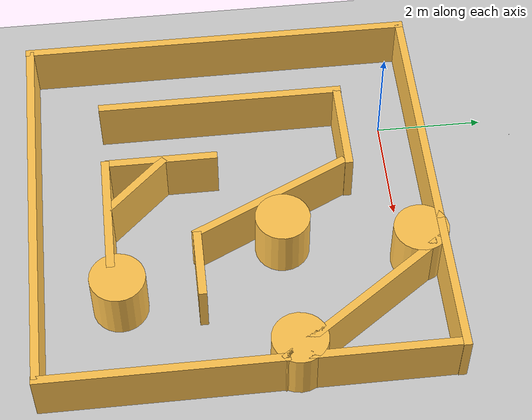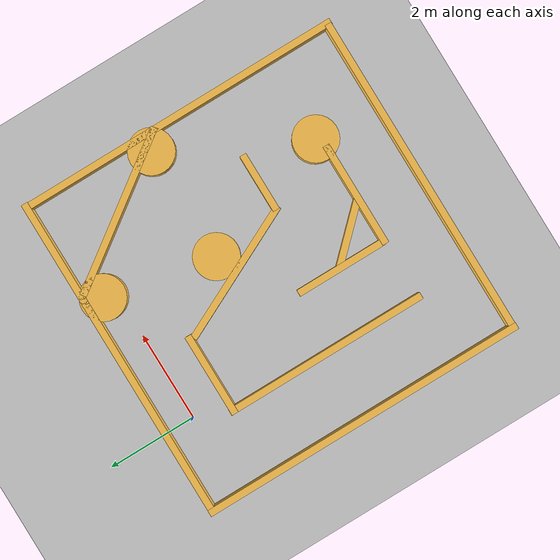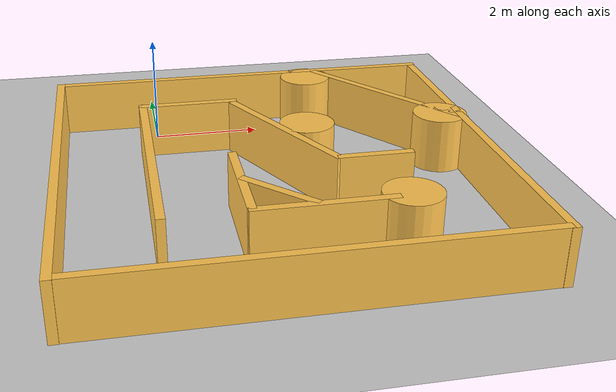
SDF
<sdf version="1.6">
 <world name="default">
  <light name="sun" type="directional">
   <pose>0 0 10 0 -0 0</pose>
   <diffuse>0.8 0.8 0.8 1</diffuse>
   <specular>0.1 0.1 0.1 1</specular>
   <attenuation>
    <range>1000</range>
    <constant>0.9</constant>
    <linear>0.01</linear>
    <quadratic>0.001</quadratic>
   </attenuation>
   <direction>-0.5 0.5 -1</direction>
  </light>
  <model name="ground_plane">
   <static>1</static>
   <link name="link">
    <collision name="collision">
     <geometry><plane><normal>0 0 1</normal><size>100 100</size></plane></geometry>
     <surface><friction><ode><mu>100</mu><mu2>50</mu2></ode></friction></surface>
    </collision>
    <visual name="visual">
     <cast_shadows>0</cast_shadows>
     <geometry><plane><normal>0 0 1</normal><size>100 100</size></plane></geometry>
     <material>
      <script><uri>file://media/materials/scripts/gazebo.material</uri><name>Gazebo/Grey</name></script>
     </material>
    </visual>
   </link>
  </model>
  <gravity>0 0 -9.8</gravity>
  <magnetic_field>6e-06 2.3e-05 -4.2e-05</magnetic_field>
  <atmosphere type="adiabatic"/>
  <physics name="default_physics" default="0" type="ode">
   <max_step_size>0.001</max_step_size>
   <real_time_factor>1</real_time_factor>
   <real_time_update_rate>1000</real_time_update_rate>
  </physics>
  <scene><ambient>0.4 0.4 0.4 1</ambient><background>0.7 0.7 0.7 1</background><shadows>1</shadows></scene>
  <spherical_coordinates>
   <surface_model>EARTH_WGS84</surface_model>
   <latitude_deg>0</latitude_deg>
   <longitude_deg>0</longitude_deg>
   <elevation>0</elevation>
   <heading_deg>0</heading_deg>
  </spherical_coordinates>
  <model name="ball_bearing">
   <link name="link">
    <pose>0 0 0.003 0 -0 0</pose>
    <inertial>
     <mass>0.0011</mass>
     <inertia>
      <ixx>3.96e-09</ixx>
      <ixy>0</ixy>
      <ixz>0</ixz>
      <iyy>3.96e-09</iyy>
      <iyz>0</iyz>
      <izz>3.96e-09</izz>
     </inertia>
    </inertial>
    <collision name="collision">
     <geometry><sphere><radius>0.003</radius></sphere></geometry>
     <surface>
      <contact>
       <poissons_ratio>0.305</poissons_ratio>
       <elastic_modulus>2e+11</elastic_modulus>
       <ode><kp>100000</kp><kd>100</kd><max_vel>100</max_vel><min_depth>0.001</min_depth></ode>
      </contact>
      <friction>
       <torsional>
        <coefficient>1</coefficient>
        <use_patch_radius>0</use_patch_radius>
        <surface_radius>0.01</surface_radius>
       </torsional>
      </friction>
     </surface>
    </collision>
    <visual name="visual">
     <geometry><sphere><radius>0.003</radius></sphere></geometry>
     <material>
      <script><uri>file://media/materials/scripts/gazebo.material</uri><name>Gazebo/Grey</name></script>
     </material>
    </visual>
    <velocity_decay><linear>0</linear><angular>0.005</angular></velocity_decay>
   </link>
   <pose>0.369697 2.53664 -0.000398 0 -0 0</pose>
  </model>
  <model name="Maze_ql_1_0">
   <link name="Wall_10">
    <pose>-2.02568 2.92333 0 0 -0 3.14159</pose>
    <visual name="Wall_10_Visual">
     <pose>0 0 0.5 0 -0 0</pose>
     <geometry><box><size>1.8711 0.15 1</size></box></geometry>
     <material>
      <script><uri>file://media/materials/scripts/gazebo.material</uri><name>Gazebo/Grey</name></script>
      <ambient>1 0.764706 0.305882 1</ambient>
      <diffuse>0.7 0.7 0.7 1</diffuse>
      <specular>0.01 0.01 0.01 1</specular>
      <emissive>0 0 0 1</emissive>
      <shader type="pixel"/>
     </material>
    </visual>
    <collision name="Wall_10_Collision">
     <pose>0 0 0.5 0 -0 0</pose>
     <geometry><box><size>1.8711 0.15 1</size></box></geometry>
     <surface>
      <friction><ode><mu>1</mu><mu2>1</mu2><fdir1>0 0 0</fdir1><slip1>0</slip1><slip2>0</slip2></ode></friction>
      <bounce><restitution_coefficient>0</restitution_coefficient><threshold>1e+06</threshold></bounce>
      <contact>
       <collide_without_contact>0</collide_without_contact>
       <collide_without_contact_bitmask>1</collide_without_contact_bitmask>
       <collide_bitmask>1</collide_bitmask>
       <ode>
        <soft_cfm>0</soft_cfm>
        <soft_erp>0.2</soft_erp>
        <kp>1e+13</kp>
        <kd>1</kd>
        <max_vel>0.01</max_vel>
        <min_depth>0</min_depth>
       </ode>
       <bullet>
        <split_impulse>1</split_impulse>
        <split_impulse_penetration_threshold>-0.01</split_impulse_penetration_threshold>
        <soft_cfm>0</soft_cfm>
        <soft_erp>0.2</soft_erp>
        <kp>1e+13</kp>
        <kd>1</kd>
       </bullet>
      </contact>
     </surface>
    </collision>
   </link>
   <link name="Wall_11">
    <pose>-2.887 0.69235 0 0 0 -1.5708</pose>
    <visual name="Wall_11_Visual">
     <pose>0 0 0.5 0 -0 0</pose>
     <geometry><box><size>4.62378 0.15 1</size></box></geometry>
     <material>
      <script><uri>file://media/materials/scripts/gazebo.material</uri><name>Gazebo/Grey</name></script>
      <ambient>1 0.764706 0.305882 1</ambient>
      <diffuse>0.7 0.7 0.7 1</diffuse>
      <specular>0.01 0.01 0.01 1</specular>
      <emissive>0 0 0 1</emissive>
      <shader type="pixel"/>
     </material>
    </visual>
    <collision name="Wall_11_Collision">
     <pose>0 0 0.5 0 -0 0</pose>
     <geometry><box><size>4.62378 0.15 1</size></box></geometry>
     <surface>
      <friction><ode><mu>1</mu><mu2>1</mu2><fdir1>0 0 0</fdir1><slip1>0</slip1><slip2>0</slip2></ode></friction>
      <bounce><restitution_coefficient>0</restitution_coefficient><threshold>1e+06</threshold></bounce>
      <contact>
       <collide_without_contact>0</collide_without_contact>
       <collide_without_contact_bitmask>1</collide_without_contact_bitmask>
       <collide_bitmask>1</collide_bitmask>
       <ode>
        <soft_cfm>0</soft_cfm>
        <soft_erp>0.2</soft_erp>
        <kp>1e+13</kp>
        <kd>1</kd>
        <max_vel>0.01</max_vel>
        <min_depth>0</min_depth>
       </ode>
       <bullet>
        <split_impulse>1</split_impulse>
        <split_impulse_penetration_threshold>-0.01</split_impulse_penetration_threshold>
        <soft_cfm>0</soft_cfm>
        <soft_erp>0.2</soft_erp>
        <kp>1e+13</kp>
        <kd>1</kd>
       </bullet>
      </contact>
     </surface>
    </collision>
   </link>
   <link name="Wall_11_clone">
    <pose>-4.44208 0.738947 0 0 0 -1.5708</pose>
    <visual name="ModelPreview_2::Wall_11_clone::Wall_11_Visual">
     <pose>0 0 0.5 0 -0 0</pose>
     <geometry><box><size>7.42809 0.15 1</size></box></geometry>
     <material>
      <script><uri>file://media/materials/scripts/gazebo.material</uri><name>Gazebo/Grey</name></script>
      <ambient>1 0.764706 0.305882 1</ambient>
      <diffuse>0.7 0.7 0.7 1</diffuse>
      <specular>0.01 0.01 0.01 1</specular>
      <emissive>0 0 0 1</emissive>
      <shader type="pixel"/>
     </material>
    </visual>
    <collision name="Wall_11_Collision">
     <pose>0 0 0.5 0 -0 0</pose>
     <geometry><box><size>7.42809 0.15 1</size></box></geometry>
     <surface>
      <friction><ode><mu>1</mu><mu2>1</mu2><fdir1>0 0 0</fdir1><slip1>0</slip1><slip2>0</slip2></ode></friction>
      <bounce><restitution_coefficient>0</restitution_coefficient><threshold>1e+06</threshold></bounce>
      <contact>
       <collide_without_contact>0</collide_without_contact>
       <collide_without_contact_bitmask>1</collide_without_contact_bitmask>
       <collide_bitmask>1</collide_bitmask>
       <ode>
        <soft_cfm>0</soft_cfm>
        <soft_erp>0.2</soft_erp>
        <kp>1e+13</kp>
        <kd>1</kd>
        <max_vel>0.01</max_vel>
        <min_depth>0</min_depth>
       </ode>
       <bullet>
        <split_impulse>1</split_impulse>
        <split_impulse_penetration_threshold>-0.01</split_impulse_penetration_threshold>
        <soft_cfm>0</soft_cfm>
        <soft_erp>0.2</soft_erp>
        <kp>1e+13</kp>
        <kd>1</kd>
       </bullet>
      </contact>
     </surface>
    </collision>
   </link>
   <link name="Wall_14">
    <pose>-0.409926 -1.55115 0 0 -0 3.14159</pose>
    <visual name="Wall_14_Visual">
     <pose>0 0 0.5 0 -0 0</pose>
     <geometry><box><size>2.36648 0.15 1</size></box></geometry>
     <material>
      <script><uri>file://media/materials/scripts/gazebo.material</uri><name>Gazebo/Grey</name></script>
      <ambient>1 0.764706 0.305882 1</ambient>
      <diffuse>0.7 0.7 0.7 1</diffuse>
      <specular>0.01 0.01 0.01 1</specular>
      <emissive>0 0 0 1</emissive>
      <shader type="pixel"/>
     </material>
    </visual>
    <collision name="Wall_14_Collision">
     <pose>0 0 0.5 0 -0 0</pose>
     <geometry><box><size>2.36648 0.15 1</size></box></geometry>
     <surface>
      <friction><ode><mu>1</mu><mu2>1</mu2><fdir1>0 0 0</fdir1><slip1>0</slip1><slip2>0</slip2></ode></friction>
      <bounce><restitution_coefficient>0</restitution_coefficient><threshold>1e+06</threshold></bounce>
      <contact>
       <collide_without_contact>0</collide_without_contact>
       <collide_without_contact_bitmask>1</collide_without_contact_bitmask>
       <collide_bitmask>1</collide_bitmask>
       <ode>
        <soft_cfm>0</soft_cfm>
        <soft_erp>0.2</soft_erp>
        <kp>1e+13</kp>
        <kd>1</kd>
        <max_vel>0.01</max_vel>
        <min_depth>0</min_depth>
       </ode>
       <bullet>
        <split_impulse>1</split_impulse>
        <split_impulse_penetration_threshold>-0.01</split_impulse_penetration_threshold>
        <soft_cfm>0</soft_cfm>
        <soft_erp>0.2</soft_erp>
        <kp>1e+13</kp>
        <kd>1</kd>
       </bullet>
      </contact>
     </surface>
    </collision>
   </link>
   <link name="Wall_15">
    <pose>-1.53187 -0.513425 0 0 -0 1.5708</pose>
    <visual name="Wall_15_Visual">
     <pose>0 0 0.5 0 -0 0</pose>
     <geometry><box><size>2.06622 0.15 1</size></box></geometry>
     <material>
      <script><uri>file://media/materials/scripts/gazebo.material</uri><name>Gazebo/Grey</name></script>
      <ambient>1 0.764706 0.305882 1</ambient>
      <diffuse>0.7 0.7 0.7 1</diffuse>
      <specular>0.01 0.01 0.01 1</specular>
      <emissive>0 0 0 1</emissive>
      <shader type="pixel"/>
     </material>
    </visual>
    <collision name="Wall_15_Collision">
     <pose>0 0 0.5 0 -0 0</pose>
     <geometry><box><size>2.06622 0.15 1</size></box></geometry>
     <surface>
      <friction><ode><mu>1</mu><mu2>1</mu2><fdir1>0 0 0</fdir1><slip1>0</slip1><slip2>0</slip2></ode></friction>
      <bounce><restitution_coefficient>0</restitution_coefficient><threshold>1e+06</threshold></bounce>
      <contact>
       <collide_without_contact>0</collide_without_contact>
       <collide_without_contact_bitmask>1</collide_without_contact_bitmask>
       <collide_bitmask>1</collide_bitmask>
       <ode>
        <soft_cfm>0</soft_cfm>
        <soft_erp>0.2</soft_erp>
        <kp>1e+13</kp>
        <kd>1</kd>
        <max_vel>0.01</max_vel>
        <min_depth>0</min_depth>
       </ode>
       <bullet>
        <split_impulse>1</split_impulse>
        <split_impulse_penetration_threshold>-0.01</split_impulse_penetration_threshold>
        <soft_cfm>0</soft_cfm>
        <soft_erp>0.2</soft_erp>
        <kp>1e+13</kp>
        <kd>1</kd>
       </bullet>
      </contact>
     </surface>
    </collision>
   </link>
   <link name="Wall_19">
    <pose>0.837565 0.010614 0 0 -0 3.14159</pose>
    <visual name="Wall_19_Visual">
     <pose>0 0 0.5 0 -0 0</pose>
     <geometry><box><size>1.32777 0.15 1</size></box></geometry>
     <material>
      <script><uri>file://media/materials/scripts/gazebo.material</uri><name>Gazebo/Grey</name></script>
      <ambient>1 0.764706 0.305882 1</ambient>
      <diffuse>0.7 0.7 0.7 1</diffuse>
      <specular>0.01 0.01 0.01 1</specular>
      <emissive>0 0 0 1</emissive>
      <shader type="pixel"/>
     </material>
    </visual>
    <collision name="Wall_19_Collision">
     <pose>0 0 0.5 0 -0 0</pose>
     <geometry><box><size>1.32777 0.15 1</size></box></geometry>
     <surface>
      <friction><ode><mu>1</mu><mu2>1</mu2><fdir1>0 0 0</fdir1><slip1>0</slip1><slip2>0</slip2></ode></friction>
      <bounce><restitution_coefficient>0</restitution_coefficient><threshold>1e+06</threshold></bounce>
      <contact>
       <collide_without_contact>0</collide_without_contact>
       <collide_without_contact_bitmask>1</collide_without_contact_bitmask>
       <collide_bitmask>1</collide_bitmask>
       <ode>
        <soft_cfm>0</soft_cfm>
        <soft_erp>0.2</soft_erp>
        <kp>1e+13</kp>
        <kd>1</kd>
        <max_vel>0.01</max_vel>
        <min_depth>0</min_depth>
       </ode>
       <bullet>
        <split_impulse>1</split_impulse>
        <split_impulse_penetration_threshold>-0.01</split_impulse_penetration_threshold>
        <soft_cfm>0</soft_cfm>
        <soft_erp>0.2</soft_erp>
        <kp>1e+13</kp>
        <kd>1</kd>
       </bullet>
      </contact>
     </surface>
    </collision>
   </link>
   <link name="Wall_20">
    <pose>-0.484506 1.39698 0 0 -0 2.02352</pose>
    <visual name="Wall_20_Visual">
     <pose>0 0 0.5 0 -0 0</pose>
     <geometry><box><size>3.22686 0.15 1</size></box></geometry>
     <material>
      <script><uri>file://media/materials/scripts/gazebo.material</uri><name>Gazebo/Grey</name></script>
      <ambient>1 0.764706 0.305882 1</ambient>
      <diffuse>0.7 0.7 0.7 1</diffuse>
      <specular>0.01 0.01 0.01 1</specular>
      <emissive>0 0 0 1</emissive>
      <shader type="pixel"/>
     </material>
    </visual>
    <collision name="Wall_20_Collision">
     <pose>0 0 0.5 0 -0 0</pose>
     <geometry><box><size>3.22686 0.15 1</size></box></geometry>
     <surface>
      <friction><ode><mu>1</mu><mu2>1</mu2><fdir1>0 0 0</fdir1><slip1>0</slip1><slip2>0</slip2></ode></friction>
      <bounce><restitution_coefficient>0</restitution_coefficient><threshold>1e+06</threshold></bounce>
      <contact>
       <collide_without_contact>0</collide_without_contact>
       <collide_without_contact_bitmask>1</collide_without_contact_bitmask>
       <collide_bitmask>1</collide_bitmask>
       <ode>
        <soft_cfm>0</soft_cfm>
        <soft_erp>0.2</soft_erp>
        <kp>1e+13</kp>
        <kd>1</kd>
        <max_vel>0.01</max_vel>
        <min_depth>0</min_depth>
       </ode>
       <bullet>
        <split_impulse>1</split_impulse>
        <split_impulse_penetration_threshold>-0.01</split_impulse_penetration_threshold>
        <soft_cfm>0</soft_cfm>
        <soft_erp>0.2</soft_erp>
        <kp>1e+13</kp>
        <kd>1</kd>
       </bullet>
      </contact>
     </surface>
    </collision>
   </link>
   <link name="Wall_24">
    <pose>1.8412 2.79579 0 0 0 -0.948986</pose>
    <visual name="Wall_24_Visual">
     <pose>0 0 0.5 0 -0 0</pose>
     <geometry><box><size>3.76645 0.15 1</size></box></geometry>
     <material>
      <script><uri>file://media/materials/scripts/gazebo.material</uri><name>Gazebo/Grey</name></script>
      <ambient>1 0.764706 0.305882 1</ambient>
      <diffuse>0.7 0.7 0.7 1</diffuse>
      <specular>0.01 0.01 0.01 1</specular>
      <emissive>0 0 0 1</emissive>
      <shader type="pixel"/>
     </material>
    </visual>
    <collision name="Wall_24_Collision">
     <pose>0 0 0.5 0 -0 0</pose>
     <geometry><box><size>3.76645 0.15 1</size></box></geometry>
     <surface>
      <friction><ode><mu>1</mu><mu2>1</mu2><fdir1>0 0 0</fdir1><slip1>0</slip1><slip2>0</slip2></ode></friction>
      <bounce><restitution_coefficient>0</restitution_coefficient><threshold>1e+06</threshold></bounce>
      <contact>
       <collide_without_contact>0</collide_without_contact>
       <collide_without_contact_bitmask>1</collide_without_contact_bitmask>
       <collide_bitmask>1</collide_bitmask>
       <ode>
        <soft_cfm>0</soft_cfm>
        <soft_erp>0.2</soft_erp>
        <kp>1e+13</kp>
        <kd>1</kd>
        <max_vel>0.01</max_vel>
        <min_depth>0</min_depth>
       </ode>
       <bullet>
        <split_impulse>1</split_impulse>
        <split_impulse_penetration_threshold>-0.01</split_impulse_penetration_threshold>
        <soft_cfm>0</soft_cfm>
        <soft_erp>0.2</soft_erp>
        <kp>1e+13</kp>
        <kd>1</kd>
       </bullet>
      </contact>
     </surface>
    </collision>
   </link>
   <link name="Wall_24_clone">
    <pose>-1.0172 -1.00075 0 0 0 -0.803995</pose>
    <visual name="ModelPreview_2::Wall_24_clone::Wall_24_Visual">
     <pose>0 0 0.5 0 -0 0</pose>
     <geometry><box><size>1.5 0.15 1</size></box></geometry>
     <material>
      <script><uri>file://media/materials/scripts/gazebo.material</uri><name>Gazebo/Grey</name></script>
      <ambient>1 0.764706 0.305882 1</ambient>
      <diffuse>0.7 0.7 0.7 1</diffuse>
      <specular>0.01 0.01 0.01 1</specular>
      <emissive>0 0 0 1</emissive>
      <shader type="pixel"/>
     </material>
    </visual>
    <collision name="Wall_24_Collision">
     <pose>0 0 0.5 0 -0 0</pose>
     <geometry><box><size>1.5 0.15 1</size></box></geometry>
     <surface>
      <friction><ode><mu>1</mu><mu2>1</mu2><fdir1>0 0 0</fdir1><slip1>0</slip1><slip2>0</slip2></ode></friction>
      <bounce><restitution_coefficient>0</restitution_coefficient><threshold>1e+06</threshold></bounce>
      <contact>
       <collide_without_contact>0</collide_without_contact>
       <collide_without_contact_bitmask>1</collide_without_contact_bitmask>
       <collide_bitmask>1</collide_bitmask>
       <ode>
        <soft_cfm>0</soft_cfm>
        <soft_erp>0.2</soft_erp>
        <kp>1e+13</kp>
        <kd>1</kd>
        <max_vel>0.01</max_vel>
        <min_depth>0</min_depth>
       </ode>
       <bullet>
        <split_impulse>1</split_impulse>
        <split_impulse_penetration_threshold>-0.01</split_impulse_penetration_threshold>
        <soft_cfm>0</soft_cfm>
        <soft_erp>0.2</soft_erp>
        <kp>1e+13</kp>
        <kd>1</kd>
       </bullet>
      </contact>
     </surface>
    </collision>
   </link>
   <link name="Wall_6">
    <pose>-0.787021 -2.89307 0 0 -0 0</pose>
    <visual name="Wall_6_Visual">
     <pose>0 0 0.5 0 -0 0</pose>
     <geometry><box><size>7.34986 0.15 1</size></box></geometry>
     <material>
      <script><uri>file://media/materials/scripts/gazebo.material</uri><name>Gazebo/Grey</name></script>
      <ambient>1 0.764706 0.305882 1</ambient>
      <diffuse>0.7 0.7 0.7 1</diffuse>
      <specular>0.01 0.01 0.01 1</specular>
      <emissive>0 0 0 1</emissive>
      <shader type="pixel"/>
     </material>
    </visual>
    <collision name="Wall_6_Collision">
     <pose>0 0 0.5 0 -0 0</pose>
     <geometry><box><size>7.34986 0.15 1</size></box></geometry>
     <surface>
      <friction><ode><mu>1</mu><mu2>1</mu2><fdir1>0 0 0</fdir1><slip1>0</slip1><slip2>0</slip2></ode></friction>
      <bounce><restitution_coefficient>0</restitution_coefficient><threshold>1e+06</threshold></bounce>
      <contact>
       <collide_without_contact>0</collide_without_contact>
       <collide_without_contact_bitmask>1</collide_without_contact_bitmask>
       <collide_bitmask>1</collide_bitmask>
       <ode>
        <soft_cfm>0</soft_cfm>
        <soft_erp>0.2</soft_erp>
        <kp>1e+13</kp>
        <kd>1</kd>
        <max_vel>0.01</max_vel>
        <min_depth>0</min_depth>
       </ode>
       <bullet>
        <split_impulse>1</split_impulse>
        <split_impulse_penetration_threshold>-0.01</split_impulse_penetration_threshold>
        <soft_cfm>0</soft_cfm>
        <soft_erp>0.2</soft_erp>
        <kp>1e+13</kp>
        <kd>1</kd>
       </bullet>
      </contact>
     </surface>
    </collision>
   </link>
   <link name="Wall_6_clone">
    <pose>-0.718431 4.37517 0 0 -0 0</pose>
    <visual name="ModelPreview_2::Wall_6_clone::Wall_6_Visual">
     <pose>0 0 0.5 0 -0 0</pose>
     <geometry><box><size>7.41907 0.15 1</size></box></geometry>
     <material>
      <script><uri>file://media/materials/scripts/gazebo.material</uri><name>Gazebo/Grey</name></script>
      <ambient>1 0.764706 0.305882 1</ambient>
      <diffuse>0.7 0.7 0.7 1</diffuse>
      <specular>0.01 0.01 0.01 1</specular>
      <emissive>0 0 0 1</emissive>
      <shader type="pixel"/>
     </material>
    </visual>
    <collision name="Wall_6_Collision">
     <pose>0 0 0.5 0 -0 0</pose>
     <geometry><box><size>7.41907 0.15 1</size></box></geometry>
     <surface>
      <friction><ode><mu>1</mu><mu2>1</mu2><fdir1>0 0 0</fdir1><slip1>0</slip1><slip2>0</slip2></ode></friction>
      <bounce><restitution_coefficient>0</restitution_coefficient><threshold>1e+06</threshold></bounce>
      <contact>
       <collide_without_contact>0</collide_without_contact>
       <collide_without_contact_bitmask>1</collide_without_contact_bitmask>
       <collide_bitmask>1</collide_bitmask>
       <ode>
        <soft_cfm>0</soft_cfm>
        <soft_erp>0.2</soft_erp>
        <kp>1e+13</kp>
        <kd>1</kd>
        <max_vel>0.01</max_vel>
        <min_depth>0</min_depth>
       </ode>
       <bullet>
        <split_impulse>1</split_impulse>
        <split_impulse_penetration_threshold>-0.01</split_impulse_penetration_threshold>
        <soft_cfm>0</soft_cfm>
        <soft_erp>0.2</soft_erp>
        <kp>1e+13</kp>
        <kd>1</kd>
       </bullet>
      </contact>
     </surface>
    </collision>
   </link>
   <link name="Wall_7">
    <pose>2.90228 0.736783 0 0 -0 1.5708</pose>
    <visual name="Wall_7_Visual">
     <pose>0 0 0.5 0 -0 0</pose>
     <geometry><box><size>7.42238 0.15 1</size></box></geometry>
     <material>
      <script><uri>file://media/materials/scripts/gazebo.material</uri><name>Gazebo/Grey</name></script>
      <ambient>1 0.764706 0.305882 1</ambient>
      <diffuse>0.7 0.7 0.7 1</diffuse>
      <specular>0.01 0.01 0.01 1</specular>
      <emissive>0 0 0 1</emissive>
      <shader type="pixel"/>
     </material>
    </visual>
    <collision name="Wall_7_Collision">
     <pose>0 0 0.5 0 -0 0</pose>
     <geometry><box><size>7.42238 0.15 1</size></box></geometry>
     <surface>
      <friction><ode><mu>1</mu><mu2>1</mu2><fdir1>0 0 0</fdir1><slip1>0</slip1><slip2>0</slip2></ode></friction>
      <bounce><restitution_coefficient>0</restitution_coefficient><threshold>1e+06</threshold></bounce>
      <contact>
       <collide_without_contact>0</collide_without_contact>
       <collide_without_contact_bitmask>1</collide_without_contact_bitmask>
       <collide_bitmask>1</collide_bitmask>
       <ode>
        <soft_cfm>0</soft_cfm>
        <soft_erp>0.2</soft_erp>
        <kp>1e+13</kp>
        <kd>1</kd>
        <max_vel>0.01</max_vel>
        <min_depth>0</min_depth>
       </ode>
       <bullet>
        <split_impulse>1</split_impulse>
        <split_impulse_penetration_threshold>-0.01</split_impulse_penetration_threshold>
        <soft_cfm>0</soft_cfm>
        <soft_erp>0.2</soft_erp>
        <kp>1e+13</kp>
        <kd>1</kd>
       </bullet>
      </contact>
     </surface>
    </collision>
   </link>
   <link name="link_1">
    <pose>1 -1.44562 0.5 0 -0 0</pose>
    <visual name="visual">
     <geometry><cylinder><radius>0.5</radius><length>1</length></cylinder></geometry>
     <material>
      <script><uri>file://media/materials/scripts/gazebo.material</uri><name>Gazebo/Grey</name></script>
      <ambient>1 0.764706 0.305882 1</ambient>
      <diffuse>0.7 0.7 0.7 1</diffuse>
      <specular>0.01 0.01 0.01 1</specular>
      <emissive>0 0 0 1</emissive>
      <shader type="pixel"/>
     </material>
    </visual>
    <collision name="collision">
     <geometry><cylinder><radius>0.5</radius><length>1</length></cylinder></geometry>
     <surface>
      <friction><ode><mu>1</mu><mu2>1</mu2><fdir1>0 0 0</fdir1><slip1>0</slip1><slip2>0</slip2></ode></friction>
      <bounce><restitution_coefficient>0</restitution_coefficient><threshold>1e+06</threshold></bounce>
      <contact>
       <collide_without_contact>0</collide_without_contact>
       <collide_without_contact_bitmask>1</collide_without_contact_bitmask>
       <collide_bitmask>1</collide_bitmask>
       <ode>
        <soft_cfm>0</soft_cfm>
        <soft_erp>0.2</soft_erp>
        <kp>1e+13</kp>
        <kd>1</kd>
        <max_vel>0.01</max_vel>
        <min_depth>0</min_depth>
       </ode>
       <bullet>
        <split_impulse>1</split_impulse>
        <split_impulse_penetration_threshold>-0.01</split_impulse_penetration_threshold>
        <soft_cfm>0</soft_cfm>
        <soft_erp>0.2</soft_erp>
        <kp>1e+13</kp>
        <kd>1</kd>
       </bullet>
      </contact>
     </surface>
    </collision>
   </link>
   <link name="link_2">
    <pose>0.498835 4 0.5 0 -0 0</pose>
    <visual name="visual">
     <geometry><cylinder><radius>0.5</radius><length>1</length></cylinder></geometry>
     <material>
      <script><uri>file://media/materials/scripts/gazebo.material</uri><name>Gazebo/Grey</name></script>
      <ambient>1 0.764706 0.305882 1</ambient>
      <diffuse>0.7 0.7 0.7 1</diffuse>
      <specular>0.01 0.01 0.01 1</specular>
      <emissive>0 0 0 1</emissive>
      <shader type="pixel"/>
     </material>
    </visual>
    <collision name="collision">
     <geometry><cylinder><radius>0.5</radius><length>1</length></cylinder></geometry>
     <surface>
      <friction><ode><mu>1</mu><mu2>1</mu2><fdir1>0 0 0</fdir1><slip1>0</slip1><slip2>0</slip2></ode></friction>
      <bounce><restitution_coefficient>0</restitution_coefficient><threshold>1e+06</threshold></bounce>
      <contact>
       <collide_without_contact>0</collide_without_contact>
       <collide_without_contact_bitmask>1</collide_without_contact_bitmask>
       <collide_bitmask>1</collide_bitmask>
       <ode>
        <soft_cfm>0</soft_cfm>
        <soft_erp>0.2</soft_erp>
        <kp>1e+13</kp>
        <kd>1</kd>
        <max_vel>0.01</max_vel>
        <min_depth>0</min_depth>
       </ode>
       <bullet>
        <split_impulse>1</split_impulse>
        <split_impulse_penetration_threshold>-0.01</split_impulse_penetration_threshold>
        <soft_cfm>0</soft_cfm>
        <soft_erp>0.2</soft_erp>
        <kp>1e+13</kp>
        <kd>1</kd>
       </bullet>
      </contact>
     </surface>
    </collision>
   </link>
   <link name="link_3">
    <pose>0 1.56543 0.5 0 -0 0</pose>
    <visual name="visual">
     <geometry><cylinder><radius>0.5</radius><length>1</length></cylinder></geometry>
     <material>
      <script><uri>file://media/materials/scripts/gazebo.material</uri><name>Gazebo/Grey</name></script>
      <ambient>1 0.764706 0.305882 1</ambient>
      <diffuse>0.7 0.7 0.7 1</diffuse>
      <specular>0.01 0.01 0.01 1</specular>
      <emissive>0 0 0 1</emissive>
      <shader type="pixel"/>
     </material>
    </visual>
    <collision name="collision">
     <geometry><cylinder><radius>0.5</radius><length>1</length></cylinder></geometry>
     <surface>
      <friction><ode><mu>1</mu><mu2>1</mu2><fdir1>0 0 0</fdir1><slip1>0</slip1><slip2>0</slip2></ode></friction>
      <bounce><restitution_coefficient>0</restitution_coefficient><threshold>1e+06</threshold></bounce>
      <contact>
       <collide_without_contact>0</collide_without_contact>
       <collide_without_contact_bitmask>1</collide_without_contact_bitmask>
       <collide_bitmask>1</collide_bitmask>
       <ode>
        <soft_cfm>0</soft_cfm>
        <soft_erp>0.2</soft_erp>
        <kp>1e+13</kp>
        <kd>1</kd>
        <max_vel>0.01</max_vel>
        <min_depth>0</min_depth>
       </ode>
       <bullet>
        <split_impulse>1</split_impulse>
        <split_impulse_penetration_threshold>-0.01</split_impulse_penetration_threshold>
        <soft_cfm>0</soft_cfm>
        <soft_erp>0.2</soft_erp>
        <kp>1e+13</kp>
        <kd>1</kd>
       </bullet>
      </contact>
     </surface>
    </collision>
   </link>
   <link name="link_4">
    <pose>2.54621 1.57728 0.5 0 -0 0</pose>
    <visual name="visual">
     <geometry><cylinder><radius>0.5</radius><length>1</length></cylinder></geometry>
     <material>
      <script><uri>file://media/materials/scripts/gazebo.material</uri><name>Gazebo/Grey</name></script>
      <ambient>1 0.764706 0.305882 1</ambient>
      <diffuse>0.7 0.7 0.7 1</diffuse>
      <specular>0.01 0.01 0.01 1</specular>
      <emissive>0 0 0 1</emissive>
      <shader type="pixel"/>
     </material>
    </visual>
    <collision name="collision">
     <geometry><cylinder><radius>0.5</radius><length>1</length></cylinder></geometry>
     <surface>
      <friction><ode><mu>1</mu><mu2>1</mu2><fdir1>0 0 0</fdir1><slip1>0</slip1><slip2>0</slip2></ode></friction>
      <bounce><restitution_coefficient>0</restitution_coefficient><threshold>1e+06</threshold></bounce>
      <contact>
       <collide_without_contact>0</collide_without_contact>
       <collide_without_contact_bitmask>1</collide_without_contact_bitmask>
       <collide_bitmask>1</collide_bitmask>
       <ode>
        <soft_cfm>0</soft_cfm>
        <soft_erp>0.2</soft_erp>
        <kp>1e+13</kp>
        <kd>1</kd>
        <max_vel>0.01</max_vel>
        <min_depth>0</min_depth>
       </ode>
       <bullet>
        <split_impulse>1</split_impulse>
        <split_impulse_penetration_threshold>-0.01</split_impulse_penetration_threshold>
        <soft_cfm>0</soft_cfm>
        <soft_erp>0.2</soft_erp>
        <kp>1e+13</kp>
        <kd>1</kd>
       </bullet>
      </contact>
     </surface>
    </collision>
   </link>
   <static>1</static>
   <pose>2.59553 -3.74004 0 0 -0 0</pose>
  </model>
 </world>
</sdf>
